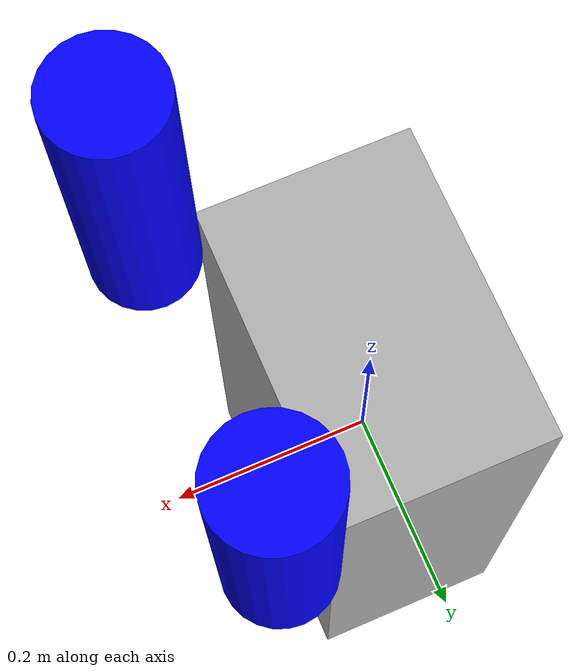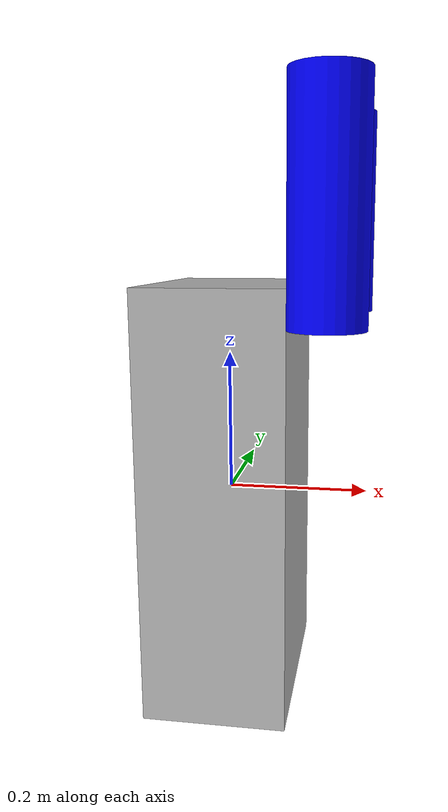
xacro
<?xml version="1.0"?>
<robot name="modular_torso_robot" xmlns:xacro="http://www.ros.org/wiki/xacro">

  <xacro:property name="PI" value="3.14159265359"/>
  <xacro:property name="arm_length" value="0.3"/>
  <xacro:property name="arm_mass" value="0.75"/>
  <xacro:property name="shoulder_offset_y" value="0.15"/>
  <xacro:property name="shoulder_pos_z" value="0.4"/>

  <link name="torso">
    <visual>
      <geometry><box size="0.2 0.3 0.6"/></geometry>
      <material name="Grey"><color rgba="0.7 0.7 0.7 1"/></material>
    </visual>
    <inertial>
      <mass value="5.0"/>
      <inertia ixx="0.1" ixy="0" ixz="0" iyy="0.1" iyz="0" izz="0.05"/>
    </inertial>
  </link>

  <xacro:macro name="arm_segment" params="prefix parent_link axis_xyz joint_xyz">

    <joint name="${prefix}_joint" type="revolute">
      <parent link="${parent_link}"/>
      <child link="${prefix}_link"/>
      <origin xyz="${joint_xyz}" rpy="0 0 0"/>
      <axis xyz="${axis_xyz}"/>
      <limit effort="5" velocity="0.5" lower="-${PI/2}" upper="${PI/2}"/>
    </joint>

    <link name="${prefix}_link">
      <visual>
        <origin xyz="${arm_length/2} 0 0" rpy="0 0 0"/>
        <geometry><cylinder radius="0.05" length="${arm_length}"/></geometry>
        <material name="Blue"><color rgba="0 0 1 1"/></material>
      </visual>
      <inertial>
        <mass value="${arm_mass}"/>
        <inertia ixx="0.001" ixy="0" ixz="0" iyy="0.001" iyz="0" izz="0.001"/>
      </inertial>
    </link>

  </xacro:macro>

  <xacro:arm_segment
    prefix="right_shoulder"
    parent_link="torso"
    axis_xyz="1 0 0"
    joint_xyz="0 -${shoulder_offset_y} ${shoulder_pos_z}"/>

  <xacro:arm_segment
    prefix="left_shoulder"
    parent_link="torso"
    axis_xyz="1 0 0"
    joint_xyz="0 ${shoulder_offset_y} ${shoulder_pos_z}"/>

</robot>
